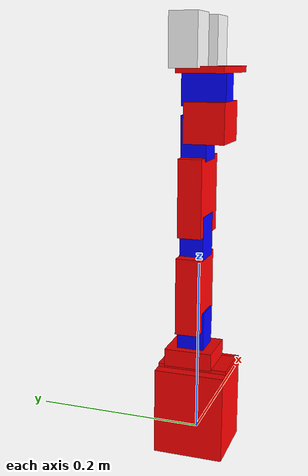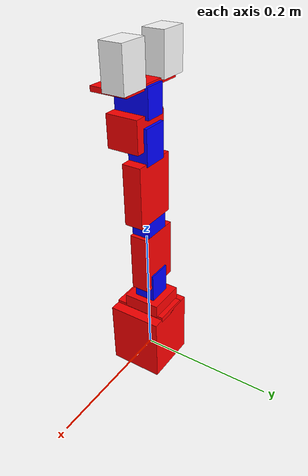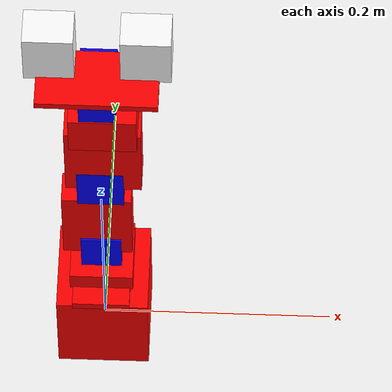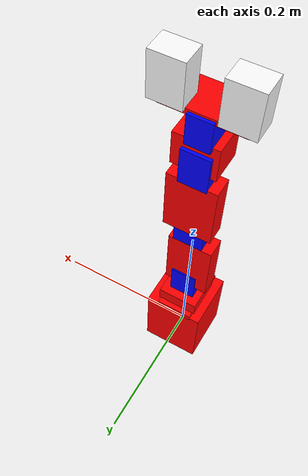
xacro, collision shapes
<?xml version="1.0"?>
<robot xmlns:xacro="http://www.ros.org/wiki/xacro" name="armando">

  <!-- Argomenti che verranno passati dal launch file -->
  <xacro:arg name="namespace" default=""/>
  <xacro:arg name="yaml_file" default=""/>
  <xacro:arg name="mesh_dir" default=""/>

  <!-- Proprietà locali -->
  <xacro:property name="prefix" value="arm_"/>
  <xacro:property name="namespace_value" value="$(arg namespace)"/>
  <xacro:property name="yaml_path" value="$(arg yaml_file)"/>
  <xacro:property name="mesh_directory" value="$(arg mesh_dir)"/>

  <material name="red">
    <color rgba="1 0 0 1"/>
  </material>

  <material name="blue">
    <color rgba="0 0 1 1"/>
  </material>

  <material name="green">
    <color rgba="0 1 0 1"/>
  </material>

  <link name="${prefix}base_link">
    <visual>
      <geometry>
        <mesh filename="${mesh_directory}/base_link.stl" scale="0.001 0.001 0.001"/>
      </geometry>
      <origin rpy="0 0 0" xyz="0 0 0.03"/>
      <material name="red"/>
    </visual>
    <collision>
      <geometry>
        <box size = "0.08 0.08 0.1"/>
      </geometry>
      <origin rpy="0 0 0" xyz="0 0 0.03"/>
    </collision>
    <inertial>
      <mass value="0.1"/>
      <inertia ixx="1.06682889e+08" ixy="0.0" ixz="0.0" iyy="9.92165844e+07" iyz="0.0" izz="1.26939175e+08"/>
    </inertial>
  </link>

  <joint name="${prefix}base_1_2" type="fixed">
    <parent link="${prefix}base_link"/>
    <child link="${prefix}base_turn"/>
    <origin xyz="-0.0011 -0.011 0.08"/>
  </joint>

  <link name="${prefix}base_turn">
    <visual>
      <geometry>
        <mesh filename="${mesh_directory}/base_turn.stl" scale="0.001 0.001 0.001"/>
      </geometry>
      <origin rpy="0 0 0" xyz="0 0 0"/>
      <material name="red"/>
    </visual>
    <collision>
      <geometry>
          <box size = "0.05 0.08 0.008"/>
        </geometry>
      <origin rpy="0 0 0" xyz="0 +0.011 0"/>
    </collision>
    <inertial>
      <mass value="0.1"/>
      <inertia ixx="1.35223008e+07" ixy="0.0" ixz="0.0" iyy="8.13814925e+06" iyz="0.0" izz="2.14903814e+07"/>
    </inertial>
  </link>

  <joint name="${prefix}j0" type="revolute">
    <parent link="${prefix}base_turn"/>
    <child link="${prefix}base_turn_rot"/>
    <origin xyz="-0.0 0.0155 0.013" rpy = "0 0 -1.57"/>
    <axis xyz="0 0 1" />
    <limit effort="300" velocity="1.1" lower="-2.57" upper="2.57"/> <!--< velocity di default 0.1 >-->
  </joint>

  <link name="${prefix}base_turn_rot">
    <visual>
      <geometry>
        <mesh filename="${mesh_directory}/base_turn_table_rot.stl" scale="0.001 0.001 0.001"/>
      </geometry>
      <material name="red"/>
    </visual>
    <collision>
      <geometry>
          <box size = "0.055 0.055 0.02"/>
        </geometry>
      <origin rpy="0 0 0" xyz="0 0 0"/>
    </collision>

    <inertial>
      <mass value="0.1"/>
      <inertia ixx="0.001" ixy="0.0" ixz="0.0" iyy="0.001" iyz="0.0" izz="0.001"/>
    </inertial>
  </link>

  <joint name="${prefix}base_turn_rot_dyn2" type="fixed">
    <parent link="${prefix}base_turn_rot"/>
    <child link="${prefix}dyn2"/>
    <origin xyz="0 0 0.0385" rpy="0 1.57 1.57 "/>
  </joint>

  <link name="${prefix}dyn2">
    <visual>
      <geometry>
        <mesh filename="${mesh_directory}/dyn.stl" scale="0.01 0.01 0.01"/>
      </geometry>
      <material name="blue"/>
      <origin rpy="0 0 0" xyz="0 0 0"/>
    </visual>
    <collision>
      <geometry>
          <box size = "0.05 0.031 0.035"/>
        </geometry>
      <origin rpy="0 0 0" xyz="0.01 0 0"/>
    </collision>
     <inertial>
      <mass value="0.1"/>
      <inertia ixx="6.90013881e-05" ixy="0.0" ixz="0.0" iyy="1.24554875e-04" iyz="0.0" izz="1.04295793e-04"/>
    </inertial>
  </link>

  <joint name="${prefix}j1" type="revolute">
    <parent link="${prefix}dyn2"/>
    <child link="${prefix}dyn2_r"/>
    <origin xyz="0 0 0.0" rpy="0 0 0"/>
    <axis xyz="0 0 1" />
    <limit effort="300" velocity="1.1" lower="-3.14" upper="3.14"/> <!--< velocity di default 0.1 >-->
  </joint>

  <link name="${prefix}dyn2_r">

  </link>

  <joint name="${prefix}dyn2_f4" type="fixed">
    <parent link="${prefix}dyn2_r"/>
    <child link="${prefix}f4"/>
    <origin xyz="-0.047 0.0 -0.003" rpy="0 1.57 1.57"/>
  </joint>

  <link name="${prefix}f4">
    <visual>
      <geometry>
        <mesh filename="${mesh_directory}/f4_n_f3.stl" scale="0.001 0.001 0.001"/>
      </geometry>
      <origin rpy="0 0 0" xyz="0 0 0"/>
      <material name="red"/>
    </visual>
    <collision>
      <geometry>
          <box size = "0.06 0.088 0.027"/>
        </geometry>
      <origin rpy="0 0 0" xyz="0 -0.01 0"/>
    </collision>
     <inertial>
      <mass value="0.1"/>
      <inertia ixx="6.90013881e-05" ixy="0.0" ixz="0.0" iyy="1.24554875e-04" iyz="0.0" izz="1.04295793e-04"/>
    </inertial>
  </link>

  <joint name="${prefix}d4_dyn3" type="fixed">
    <parent link="${prefix}f4"/>
    <child link="${prefix}dyn3"/>
    <origin xyz="-0.004 0.0645 0 " rpy="-1.57 3.14 1.57"/>
  </joint>

  <link name="${prefix}dyn3">
    <visual>
      <geometry>
        <mesh filename="${mesh_directory}/dyn.stl" scale="0.01 0.01 0.01"/>
      </geometry>
      <material name="blue"/>
      <origin rpy="0 0 0" xyz="0 0 0"/>
    </visual>
    <collision>
      <geometry>
          <box size = "0.05 0.027 0.04"/>
        </geometry>
      <origin rpy="0 0 0" xyz="0.01 0 0"/>
    </collision>
     <inertial>
      <mass value="0.1"/>
      <inertia ixx="6.90013881e-05" ixy="0.0" ixz="0.0" iyy="1.24554875e-04" iyz="0.0" izz="1.04295793e-04"/>
    </inertial>
  </link>

  <joint name="${prefix}j2" type="revolute">
    <parent link="${prefix}dyn3"/>
    <child link="${prefix}dyn3_r"/>
    <origin xyz="0 0 0.0" rpy="0 0 0"/>
    <axis xyz="0 0 1" />
    <limit effort="300" velocity="1.1" lower="-3.14" upper="3.14"/> <!--< velocity di default 0.1 >-->
  </joint>

 <link name="${prefix}dyn3_r">

  </link>

  <joint name="${prefix}dyn3_f5" type="fixed">
    <parent link="${prefix}dyn3_r"/>
    <child link="${prefix}f5"/>
    <origin xyz="-0.046 -0.0 -0.002" rpy="1.57 1.57 3.1415 "/>
  </joint>

  <link name="${prefix}f5">
    <visual>
      <geometry>
        <mesh filename="${mesh_directory}/f4_n_f3.stl" scale="0.001 0.001 0.001"/>
      </geometry>
      <origin rpy="0 0 0" xyz="0 0 0"/>
      <material name="red"/>
    </visual>
    <collision>
      <geometry>
          <box size = "0.065 0.088 0.027"/>
        </geometry>
      <origin rpy="0 0 0" xyz="-0.005 -0.01 0"/>
    </collision>

    <inertial>
      <mass value="0.1"/>
  <inertia ixx="0.001" ixy="0.0" ixz="0.0" iyy="0.001" iyz="0.0" izz="0.001"/>    </inertial>
  </link>

  <joint name="${prefix}f5_dyn4" type="fixed">
    <parent link="${prefix}f5"/>
    <child link="${prefix}dyn4"/>
    <origin xyz="-0.004 0.065 -0.0" rpy="-1.57 3.1415 1.57 "/>
  </joint>

  <link name="${prefix}dyn4">
    <visual>
      <geometry>
        <mesh filename="${mesh_directory}/dyn.stl" scale="0.01 0.01 0.01"/>
      </geometry>
      <material name="blue"/>
      <origin rpy="0 0 0" xyz="0 0 0"/>
    </visual>
    <collision>
      <geometry>
          <box size = "0.05 0.029 0.037"/>
        </geometry>
      <origin rpy="0 0 0" xyz="0.01 0 0"/>
    </collision>

    <inertial>
      <mass value="0.1"/>
      <inertia ixx="6.90013881e-05" ixy="0.0" ixz="0.0" iyy="1.24554875e-04" iyz="0.0" izz="1.04295793e-04"/>
    </inertial>
  </link>

  <joint name="${prefix}j3" type="revolute">
    <parent link="${prefix}dyn4"/>
    <child link="${prefix}dyn4_r"/>
    <origin xyz="0 0 0.0" rpy="0 0 0"/>
    <axis xyz="0 0 1" />
    <limit effort="300" velocity="1.1" lower="-3.14" upper="3.14"/> <!--< velocity di default 0.1 >-->
  </joint>

  <link name="${prefix}dyn4_r">

  </link>

  <joint name="${prefix}f5_wrist" type="fixed">
    <parent link="${prefix}dyn4_r"/>
    <child link="${prefix}wrist"/>
    <origin xyz="-0.017 -0.013 0.003" rpy="1.57 1.57 -1.57"/>
  </joint>

  <link name="${prefix}wrist">
    <visual>
      <geometry>
        <mesh filename="${mesh_directory}/wrist.stl" scale="0.001 0.001 0.001"/>
      </geometry>
      <origin rpy="0 0 0" xyz="0 0 0"/>
      <material name="red"/>
    </visual>
    <collision>
      <geometry>
        <box size = "0.057 0.046 0.045"/>
      </geometry>
      <origin rpy="0 0 0" xyz="0 0 -0.01"/>
    </collision>

     <inertial>
      <mass value="0.1"/>
      <inertia ixx="6.90013881e-05" ixy="0.0" ixz="0.0" iyy="1.24554875e-04" iyz="0.0" izz="1.04295793e-04"/>
    </inertial>
  </link>

  <joint name="${prefix}wrist_dyn5" type="fixed">
    <parent link="${prefix}wrist"/>
    <child link="${prefix}dyn5"/>
    <origin xyz="0.0038 -0.013 0.0275" rpy="0 0 1.57"/>
  </joint>

    <link name="${prefix}dyn5">
    <visual>
      <geometry>
        <mesh filename="${mesh_directory}/dyn.stl" scale="0.01 0.01 0.01"/>
      </geometry>
      <material name="blue"/>
      <origin rpy="0 0 0" xyz="0 0 0"/>
    </visual>
    <collision>
      <geometry>
          <box size = "0.05 0.031 0.04"/>
        </geometry>
      <origin rpy="0 0 0" xyz="0.01 0 0"/>
    </collision>

    <inertial>
      <mass value="0.1"/>
      <inertia ixx="6.90013881e-05" ixy="0.0" ixz="0.0" iyy="1.24554875e-04" iyz="0.0" izz="1.04295793e-04"/>
    </inertial>
  </link>

  <joint name="${prefix}dyn5_dyn5_r" type="fixed">
    <parent link="${prefix}dyn5"/>
    <child link="${prefix}dyn5_r"/>
    <origin xyz="0 0 0.0" rpy="0 0 0"/>
    <axis xyz="0 0 1" />
    <limit effort="300" velocity="1.1" lower="-3.14" upper="3.14"/> <!--< velocity di default 0.1 >-->
  </joint>

  <link name="${prefix}dyn5_r">

  </link>

  <joint name="${prefix}wrist_rotate_dyn5" type="fixed">
    <parent link="${prefix}dyn5_r"/>
    <child link="${prefix}crawer_base"/>
    <origin xyz="0.015 0 0.019" rpy="0 0 1.57"/>
  </joint>

  <link name="${prefix}crawer_base">
    <visual>
      <geometry>
        <mesh filename="${mesh_directory}/the_crawer_base.stl" scale="0.001 0.001 0.001"/>
      </geometry>
      <origin rpy="0 0 0" xyz="0 0 0"/>
      <material name="red"/>
    </visual>
    <collision>
      <geometry>
          <box size = "0.102 0.052 0.007"/>
        </geometry>
      <origin rpy="0 0 0" xyz="0 0 0"/>
    </collision>

    <inertial>
      <mass value="0.1"/>
      <inertia ixx="6.90013881e-05" ixy="0.0" ixz="0.0" iyy="1.24554875e-04" iyz="0.0" izz="1.04295793e-04"/>
    </inertial>
  </link>

  <!-- Joint prismatico per la pinza sinistra -->
  <joint name="${prefix}gripper_left_joint" type="prismatic">
    <parent link="${prefix}crawer_base"/>
    <child link="${prefix}crawer_left"/>
    <origin xyz="-0.03 0.015 0.01" rpy="0 -1.57 0"/>
    <axis xyz="0 0 1"/>  <!-- Si muove lungo l'asse X -->
    <limit effort="20" velocity="0.1" lower="0.0" upper="0.03"/>  <!-- 3cm di apertura; velocity di default 0.05 -->
  </joint>

  <link name="${prefix}crawer_left">
    <visual>
      <geometry>
        <mesh filename="${mesh_directory}/the_crawer.stl" scale="0.001 0.001 0.001"/>
      </geometry>
      <origin rpy="0 0 0" xyz="0 0 0"/>
      <material name="white">
        <color rgba="1 1 1 1"/>
      </material>
    </visual>
    <collision>
      <geometry>
          <box size = "0.057 0.031 0.042"/>
        </geometry>
      <origin rpy="0 0 0" xyz="0.02 0 0.01"/>
    </collision>

    <inertial>
      <mass value="0.1"/>
      <inertia ixx="6.90013881e-05" ixy="0.0" ixz="0.0" iyy="1.24554875e-04" iyz="0.0" izz="1.04295793e-04"/>
    </inertial>
  </link>

  <!-- Joint prismatico per la pinza destra -->
  <joint name="${prefix}gripper_right_joint" type="prismatic">
    <parent link="${prefix}crawer_base"/>
    <child link="${prefix}crawer_right"/>
    <origin xyz="0.03 0.015 0.01" rpy="3.1415 -1.57 0"/>
    <axis xyz="0 0 1"/>  <!-- Si muove in direzione opposta -->
    <limit effort="20" velocity="0.1" lower="0.0" upper="0.03"/>  <!-- 3cm di apertura; velocity di default 0.05 -->
  </joint>

  <link name="${prefix}crawer_right">
    <visual>
      <geometry>
        <mesh filename="${mesh_directory}/the_crawer.stl" scale="0.001 0.001 0.001"/>
      </geometry>
      <origin rpy="0 0 0" xyz="0 0 0"/>
      <material name="white">
        <color rgba="1 1 1 1"/>
      </material>
    </visual>
    <collision>
      <geometry>
          <box size = "0.057 0.031 0.042"/>
        </geometry>
      <origin rpy="0 0 0" xyz="0.02 0 0.01"/>
    </collision>

    <inertial>
      <mass value="0.1"/>
      <inertia ixx="6.90013881e-05" ixy="0.0" ixz="0.0" iyy="1.24554875e-04" iyz="0.0" izz="1.04295793e-04"/>
    </inertial>
  </link>

  <!-- ========== GAZEBO PLUGINS ========== -->

  <gazebo>
    <plugin filename="gz_ros2_control-system" name="gz_ros2_control::GazeboSimROS2ControlPlugin">
      <parameters>$(arg yaml_file)</parameters>
      <ros>
      <namespace>$(arg namespace)</namespace>
      </ros>
      <control_period>0.01</control_period>  <!-- 100 Hz = 0.01 secondi -->
    </plugin>
  </gazebo>

  <!-- Colori e proprietà fisiche per Gazebo -->
  <gazebo reference="${prefix}base_link">
    <material>Gazebo/Red</material>
    <mu1>0.2</mu1>
    <mu2>0.2</mu2>
  </gazebo>

  <gazebo reference="${prefix}base_turn">
    <material>Gazebo/Red</material>
  </gazebo>

  <gazebo reference="${prefix}base_turn_rot">
    <material>Gazebo/Red</material>
  </gazebo>

  <gazebo reference="${prefix}dyn2">
    <material>Gazebo/Blue</material>
  </gazebo>

  <gazebo reference="${prefix}dyn3">
    <material>Gazebo/Blue</material>
  </gazebo>

  <gazebo reference="${prefix}dyn4">
    <material>Gazebo/Blue</material>
  </gazebo>

  <gazebo reference="${prefix}dyn5">
    <material>Gazebo/Blue</material>
  </gazebo>

  <gazebo reference="${prefix}f4">
    <material>Gazebo/Red</material>
  </gazebo>

  <gazebo reference="${prefix}f5">
    <material>Gazebo/Red</material>
  </gazebo>

  <gazebo reference="${prefix}wrist">
    <material>Gazebo/Red</material>
  </gazebo>

  <gazebo reference="${prefix}crawer_base">
    <material>Gazebo/Red</material>
  </gazebo>

  <gazebo reference="${prefix}crawer_left">
    <material>Gazebo/White</material>
  </gazebo>

  <gazebo reference="${prefix}crawer_right">
    <material>Gazebo/White</material>
  </gazebo>

  <gazebo reference="${prefix}crawer_left">
    <material>Gazebo/White</material>
    <mu1>1.0</mu1>  <!-- ✅ Attrito aumentato -->
    <mu2>1.0</mu2>
    <kp>1000000.0</kp>  <!-- ✅ Rigidità contatto -->
    <kd>1.0</kd>
  </gazebo>

  <gazebo reference="${prefix}crawer_right">
    <material>Gazebo/White</material>
    <mu1>1.0</mu1>
    <mu2>1.0</mu2>
    <kp>1000000.0</kp>
    <kd>1.0</kd>
  </gazebo>

  <!-- ros2_control hardware interface -->
  <ros2_control name="GazeboSimSystem" type="system">
    <hardware>
      <plugin>gz_ros2_control/GazeboSimSystem</plugin>
    </hardware>

    <joint name="${prefix}j0">
      <command_interface name="position">
        <param name="min">-2.57</param>
        <param name="max">2.57</param>
      </command_interface>
      <state_interface name="position"/>
      <state_interface name="velocity"/>
    </joint>

    <joint name="${prefix}j1">
      <command_interface name="position">
        <param name="min">-3.14</param>
        <param name="max">3.14</param>
      </command_interface>
      <state_interface name="position"/>
      <state_interface name="velocity"/>
    </joint>

    <joint name="${prefix}j2">
      <command_interface name="position">
        <param name="min">-3.14</param>
        <param name="max">3.14</param>
      </command_interface>
      <state_interface name="position"/>
      <state_interface name="velocity"/>
    </joint>

    <joint name="${prefix}j3">
      <command_interface name="position">
        <param name="min">-3.14</param>
        <param name="max">3.14</param>
      </command_interface>
      <state_interface name="position"/>
      <state_interface name="velocity"/>
    </joint>

    <joint name="${prefix}gripper_left_joint">
      <command_interface name="position">
        <param name="min">0.0</param>
        <param name="max">0.03</param>
      </command_interface>
      <state_interface name="position"/>
      <state_interface name="velocity"/>
    </joint>

    <joint name="${prefix}gripper_right_joint">
      <command_interface name="position">
        <param name="min">0.0</param>
        <param name="max">0.03</param>
      </command_interface>
      <state_interface name="position"/>
      <state_interface name="velocity"/>

    </joint>

  </ros2_control>

</robot>
